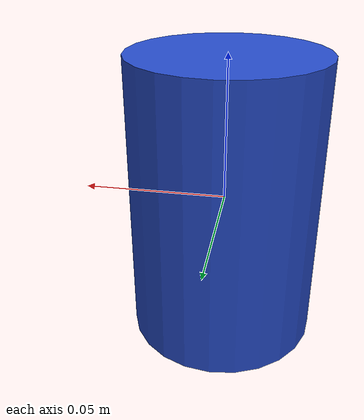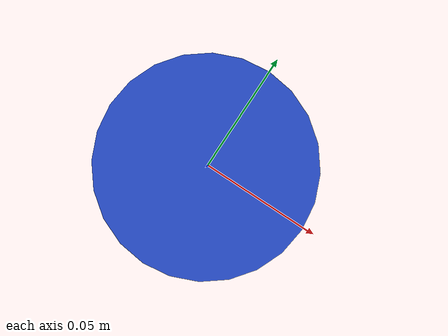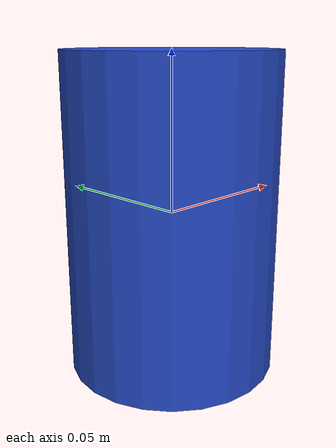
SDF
<?xml version='1.0'?>
<sdf version='1.6'>
  <model name='unit_cylinder'>
    <link name='link'>
      <pose frame=''>0 0 0 0 -0 0</pose>
      <inertial>
        <mass>1.394</mass>
        <inertia>
          <ixx>0.005418733</ixx>
          <ixy>0</ixy>
          <ixz>0</ixz>
          <iyy>0.005418733</iyy>
          <iyz>0</iyz>
          <izz>0.00214533</izz>
        </inertia>
        <pose frame=''>0 0 0 0 -0 0</pose>
      </inertial>
      <self_collide>0</self_collide>
      <kinematic>0</kinematic>
      <gravity>1</gravity>
      <visual name='visual'>
        <geometry>
          <cylinder>
            <radius>0.033</radius>
            <length>0.1</length>
          </cylinder>
        </geometry>
        <material>
          <script>
            <name>Gazebo/Blue</name>
            <uri>file://media/materials/scripts/gazebo.material</uri>
          </script>
          <shader type='pixel'>
            <normal_map>__default__</normal_map>
          </shader>
        </material>
        <pose frame=''>0 0 0 0 -0 0</pose>
        <transparency>0</transparency>
        <cast_shadows>1</cast_shadows>
      </visual>
      <collision name='collision'>
        <laser_retro>0</laser_retro>
        <max_contacts>10</max_contacts>
        <pose frame=''>0 0 0 0 -0 0</pose>
        <geometry>
          <cylinder>
            <radius>0.033</radius>
            <length>0.1</length>
          </cylinder>
        </geometry>
        <surface>
          <friction>
            <ode>
              <mu>0.8</mu>
              <mu2>0.8</mu2>
              <fdir1>0 0 0</fdir1>
              <slip1>0</slip1>
              <slip2>0</slip2>
            </ode>
            <torsional>
              <coefficient>1</coefficient>
              <patch_radius>0</patch_radius>
              <surface_radius>0</surface_radius>
              <use_patch_radius>1</use_patch_radius>
              <ode>
                <slip>0</slip>
              </ode>
            </torsional>
          </friction>
          <bounce>
            <restitution_coefficient>0</restitution_coefficient>
            <threshold>1e+06</threshold>
          </bounce>
          <contact>
            <collide_without_contact>0</collide_without_contact>
            <collide_without_contact_bitmask>1</collide_without_contact_bitmask>
            <collide_bitmask>1</collide_bitmask>
            <ode>
              <soft_cfm>0</soft_cfm>
              <soft_erp>0.2</soft_erp>
              <kp>1e+13</kp>
              <kd>1</kd>
              <max_vel>0.01</max_vel>
              <min_depth>0</min_depth>
            </ode>
            <bullet>
              <split_impulse>1</split_impulse>
              <split_impulse_penetration_threshold>-0.01</split_impulse_penetration_threshold>
              <soft_cfm>0</soft_cfm>
              <soft_erp>0.2</soft_erp>
              <kp>1e+13</kp>
              <kd>1</kd>
            </bullet>
          </contact>
        </surface>
      </collision>
    </link>
    <static>0</static>
    <allow_auto_disable>1</allow_auto_disable>
  </model>
</sdf>
